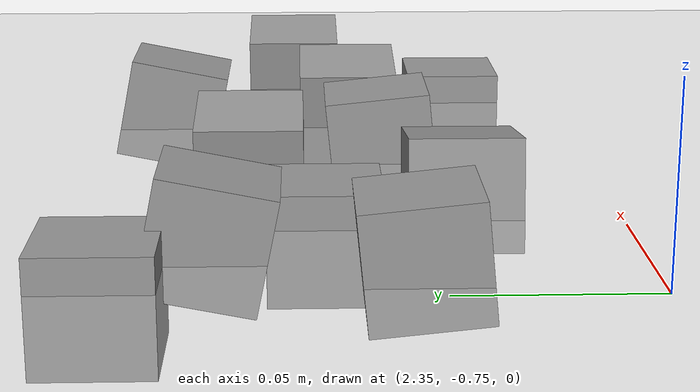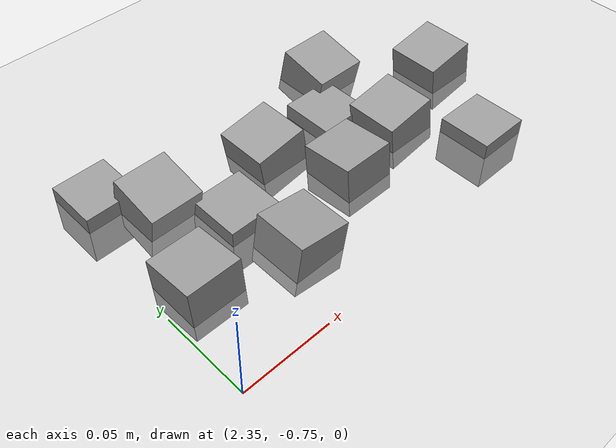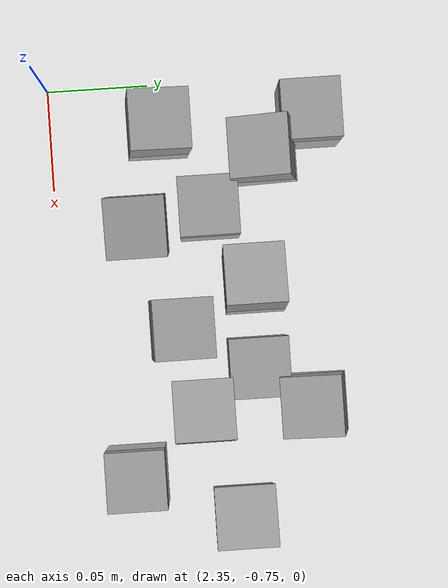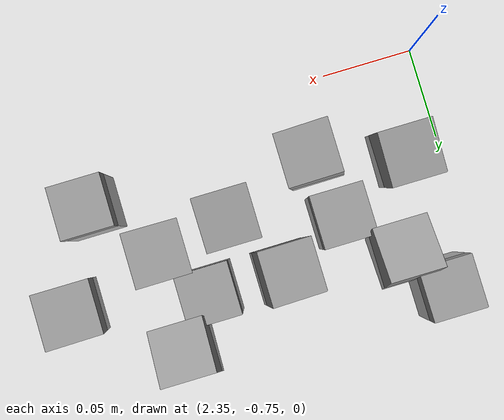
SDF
<sdf version="1.7">
 <world name="default">
  <model name="ground_plane">
   <static>1</static>
   <link name="link">
    <collision name="collision">
     <geometry><plane><normal>0 0 1</normal><size>100 100</size></plane></geometry>
     <surface><friction><ode><mu>100</mu><mu2>50</mu2></ode></friction></surface>
    </collision>
    <visual name="visual">
     <cast_shadows>0</cast_shadows>
     <geometry><plane><normal>0 0 1</normal><size>100 100</size></plane></geometry>
     <material>
      <script><uri>file://media/materials/scripts/gazebo.material</uri><name>Gazebo/Grey</name></script>
     </material>
    </visual>
   </link>
  </model>
  <model name="stone_road_6">
   <link name="link_0_clone_11">
    <inertial>
     <mass>1</mass>
     <inertia>
      <ixx>0.166667</ixx>
      <ixy>0</ixy>
      <ixz>0</ixz>
      <iyy>0.166667</iyy>
      <iyz>0</iyz>
      <izz>0.166667</izz>
     </inertia>
    </inertial>
    <pose>0.007758 0.071496 0.003778 0.2 -0 0</pose>
    <kinematic>1</kinematic>
    <visual name="visual">
     <geometry><box><size>0.03 0.03 0.03</size></box></geometry>
     <material>
      <lighting>1</lighting>
      <script><uri>file://media/materials/scripts/gazebo.material</uri><name>Gazebo/Grey</name></script>
      <shader type="pixel"><normal_map>__default__</normal_map></shader>
      <ambient>0.3 0.3 0.3 1</ambient>
      <diffuse>0.7 0.7 0.7 1</diffuse>
      <specular>0.01 0.01 0.01 1</specular>
      <emissive>0 0 0 1</emissive>
     </material>
    </visual>
    <collision name="collision">
     <geometry><box><size>0.03 0.03 0.03</size></box></geometry>
     <surface>
      <friction>
       <ode><mu>1</mu><mu2>1</mu2><fdir1>0 0 0</fdir1><slip1>0</slip1><slip2>0</slip2></ode>
       <torsional>
        <coefficient>1</coefficient>
        <patch_radius>0</patch_radius>
        <surface_radius>0</surface_radius>
        <use_patch_radius>1</use_patch_radius>
        <ode><slip>0</slip></ode>
       </torsional>
      </friction>
      <bounce><restitution_coefficient>0</restitution_coefficient><threshold>1e+06</threshold></bounce>
      <contact>
       <collide_without_contact>0</collide_without_contact>
       <collide_without_contact_bitmask>1</collide_without_contact_bitmask>
       <collide_bitmask>1</collide_bitmask>
       <ode>
        <soft_cfm>0</soft_cfm>
        <soft_erp>0.2</soft_erp>
        <kp>1e+13</kp>
        <kd>1</kd>
        <max_vel>0.01</max_vel>
        <min_depth>0</min_depth>
       </ode>
       <bullet>
        <split_impulse>1</split_impulse>
        <split_impulse_penetration_threshold>-0.01</split_impulse_penetration_threshold>
        <soft_cfm>0</soft_cfm>
        <soft_erp>0.2</soft_erp>
        <kp>1e+13</kp>
        <kd>1</kd>
       </bullet>
      </contact>
     </surface>
    </collision>
   </link>
   <link name="link_0_clone_2_clone_1">
    <inertial>
     <mass>1</mass>
     <inertia>
      <ixx>0.166667</ixx>
      <ixy>0</ixy>
      <ixz>0</ixz>
      <iyy>0.166667</iyy>
      <iyz>0</iyz>
      <izz>0.166667</izz>
     </inertia>
    </inertial>
    <pose>0.041447 0.006316 0.003778 0 0.15 0</pose>
    <kinematic>1</kinematic>
    <visual name="visual">
     <geometry><box><size>0.03 0.03 0.03</size></box></geometry>
     <material>
      <lighting>1</lighting>
      <script><uri>file://media/materials/scripts/gazebo.material</uri><name>Gazebo/Grey</name></script>
      <shader type="pixel"><normal_map>__default__</normal_map></shader>
      <ambient>0.3 0.3 0.3 1</ambient>
      <diffuse>0.7 0.7 0.7 1</diffuse>
      <specular>0.01 0.01 0.01 1</specular>
      <emissive>0 0 0 1</emissive>
     </material>
    </visual>
    <collision name="collision">
     <geometry><box><size>0.03 0.03 0.03</size></box></geometry>
     <surface>
      <friction>
       <ode><mu>1</mu><mu2>1</mu2><fdir1>0 0 0</fdir1><slip1>0</slip1><slip2>0</slip2></ode>
       <torsional>
        <coefficient>1</coefficient>
        <patch_radius>0</patch_radius>
        <surface_radius>0</surface_radius>
        <use_patch_radius>1</use_patch_radius>
        <ode><slip>0</slip></ode>
       </torsional>
      </friction>
      <bounce><restitution_coefficient>0</restitution_coefficient><threshold>1e+06</threshold></bounce>
      <contact>
       <collide_without_contact>0</collide_without_contact>
       <collide_without_contact_bitmask>1</collide_without_contact_bitmask>
       <collide_bitmask>1</collide_bitmask>
       <ode>
        <soft_cfm>0</soft_cfm>
        <soft_erp>0.2</soft_erp>
        <kp>1e+13</kp>
        <kd>1</kd>
        <max_vel>0.01</max_vel>
        <min_depth>0</min_depth>
       </ode>
       <bullet>
        <split_impulse>1</split_impulse>
        <split_impulse_penetration_threshold>-0.01</split_impulse_penetration_threshold>
        <soft_cfm>0</soft_cfm>
        <soft_erp>0.2</soft_erp>
        <kp>1e+13</kp>
        <kd>1</kd>
       </bullet>
      </contact>
     </surface>
    </collision>
   </link>
   <link name="link_0_clone_2_clone_2_clone">
    <inertial>
     <mass>1</mass>
     <inertia>
      <ixx>0.166667</ixx>
      <ixy>0</ixy>
      <ixz>0</ixz>
      <iyy>0.166667</iyy>
      <iyz>0</iyz>
      <izz>0.166667</izz>
     </inertia>
    </inertial>
    <pose>0.189059 0.051135 0.003778 0 -0.15 0</pose>
    <kinematic>1</kinematic>
    <visual name="visual">
     <geometry><box><size>0.03 0.03 0.03</size></box></geometry>
     <material>
      <lighting>1</lighting>
      <script><uri>file://media/materials/scripts/gazebo.material</uri><name>Gazebo/Grey</name></script>
      <shader type="pixel"><normal_map>__default__</normal_map></shader>
      <ambient>0.3 0.3 0.3 1</ambient>
      <diffuse>0.7 0.7 0.7 1</diffuse>
      <specular>0.01 0.01 0.01 1</specular>
      <emissive>0 0 0 1</emissive>
     </material>
    </visual>
    <collision name="collision">
     <geometry><box><size>0.03 0.03 0.03</size></box></geometry>
     <surface>
      <friction>
       <ode><mu>1</mu><mu2>1</mu2><fdir1>0 0 0</fdir1><slip1>0</slip1><slip2>0</slip2></ode>
       <torsional>
        <coefficient>1</coefficient>
        <patch_radius>0</patch_radius>
        <surface_radius>0</surface_radius>
        <use_patch_radius>1</use_patch_radius>
        <ode><slip>0</slip></ode>
       </torsional>
      </friction>
      <bounce><restitution_coefficient>0</restitution_coefficient><threshold>1e+06</threshold></bounce>
      <contact>
       <collide_without_contact>0</collide_without_contact>
       <collide_without_contact_bitmask>1</collide_without_contact_bitmask>
       <collide_bitmask>1</collide_bitmask>
       <ode>
        <soft_cfm>0</soft_cfm>
        <soft_erp>0.2</soft_erp>
        <kp>1e+13</kp>
        <kd>1</kd>
        <max_vel>0.01</max_vel>
        <min_depth>0</min_depth>
       </ode>
       <bullet>
        <split_impulse>1</split_impulse>
        <split_impulse_penetration_threshold>-0.01</split_impulse_penetration_threshold>
        <soft_cfm>0</soft_cfm>
        <soft_erp>0.2</soft_erp>
        <kp>1e+13</kp>
        <kd>1</kd>
       </bullet>
      </contact>
     </surface>
    </collision>
   </link>
   <link name="link_0_clone_2_clone_2_clone_13_clone_clone_0">
    <inertial>
     <mass>1</mass>
     <inertia>
      <ixx>0.166667</ixx>
      <ixy>0</ixy>
      <ixz>0</ixz>
      <iyy>0.166667</iyy>
      <iyz>0</iyz>
      <izz>0.166667</izz>
     </inertia>
    </inertial>
    <pose>0.094072 0.02539 0.003778 -0.1 0 0</pose>
    <kinematic>1</kinematic>
    <visual name="visual">
     <geometry><box><size>0.03 0.03 0.03</size></box></geometry>
     <material>
      <lighting>1</lighting>
      <script><uri>file://media/materials/scripts/gazebo.material</uri><name>Gazebo/Grey</name></script>
      <shader type="pixel"><normal_map>__default__</normal_map></shader>
      <ambient>0.3 0.3 0.3 1</ambient>
      <diffuse>0.7 0.7 0.7 1</diffuse>
      <specular>0.01 0.01 0.01 1</specular>
      <emissive>0 0 0 1</emissive>
     </material>
    </visual>
    <collision name="collision">
     <geometry><box><size>0.03 0.03 0.03</size></box></geometry>
     <surface>
      <friction>
       <ode><mu>1</mu><mu2>1</mu2><fdir1>0 0 0</fdir1><slip1>0</slip1><slip2>0</slip2></ode>
       <torsional>
        <coefficient>1</coefficient>
        <patch_radius>0</patch_radius>
        <surface_radius>0</surface_radius>
        <use_patch_radius>1</use_patch_radius>
        <ode><slip>0</slip></ode>
       </torsional>
      </friction>
      <bounce><restitution_coefficient>0</restitution_coefficient><threshold>1e+06</threshold></bounce>
      <contact>
       <collide_without_contact>0</collide_without_contact>
       <collide_without_contact_bitmask>1</collide_without_contact_bitmask>
       <collide_bitmask>1</collide_bitmask>
       <ode>
        <soft_cfm>0</soft_cfm>
        <soft_erp>0.2</soft_erp>
        <kp>1e+13</kp>
        <kd>1</kd>
        <max_vel>0.01</max_vel>
        <min_depth>0</min_depth>
       </ode>
       <bullet>
        <split_impulse>1</split_impulse>
        <split_impulse_penetration_threshold>-0.01</split_impulse_penetration_threshold>
        <soft_cfm>0</soft_cfm>
        <soft_erp>0.2</soft_erp>
        <kp>1e+13</kp>
        <kd>1</kd>
       </bullet>
      </contact>
     </surface>
    </collision>
   </link>
   <link name="link_0_clone_2_clone_2_clone_13_clone_clone_16_clone_0">
    <inertial>
     <mass>1</mass>
     <inertia>
      <ixx>0.166667</ixx>
      <ixy>0</ixy>
      <ixz>0</ixz>
      <iyy>0.166667</iyy>
      <iyz>0</iyz>
      <izz>0.166667</izz>
     </inertia>
    </inertial>
    <pose>-0.010782 0.09679 -0.006222 0 -0 0</pose>
    <kinematic>1</kinematic>
    <visual name="visual">
     <geometry><box><size>0.03 0.03 0.03</size></box></geometry>
     <material>
      <lighting>1</lighting>
      <script><uri>file://media/materials/scripts/gazebo.material</uri><name>Gazebo/Grey</name></script>
      <shader type="pixel"><normal_map>__default__</normal_map></shader>
      <ambient>0.3 0.3 0.3 1</ambient>
      <diffuse>0.7 0.7 0.7 1</diffuse>
      <specular>0.01 0.01 0.01 1</specular>
      <emissive>0 0 0 1</emissive>
     </material>
    </visual>
    <collision name="collision">
     <geometry><box><size>0.03 0.03 0.03</size></box></geometry>
     <surface>
      <friction>
       <ode><mu>1</mu><mu2>1</mu2><fdir1>0 0 0</fdir1><slip1>0</slip1><slip2>0</slip2></ode>
       <torsional>
        <coefficient>1</coefficient>
        <patch_radius>0</patch_radius>
        <surface_radius>0</surface_radius>
        <use_patch_radius>1</use_patch_radius>
        <ode><slip>0</slip></ode>
       </torsional>
      </friction>
      <bounce><restitution_coefficient>0</restitution_coefficient><threshold>1e+06</threshold></bounce>
      <contact>
       <collide_without_contact>0</collide_without_contact>
       <collide_without_contact_bitmask>1</collide_without_contact_bitmask>
       <collide_bitmask>1</collide_bitmask>
       <ode>
        <soft_cfm>0</soft_cfm>
        <soft_erp>0.2</soft_erp>
        <kp>1e+13</kp>
        <kd>1</kd>
        <max_vel>0.01</max_vel>
        <min_depth>0</min_depth>
       </ode>
       <bullet>
        <split_impulse>1</split_impulse>
        <split_impulse_penetration_threshold>-0.01</split_impulse_penetration_threshold>
        <soft_cfm>0</soft_cfm>
        <soft_erp>0.2</soft_erp>
        <kp>1e+13</kp>
        <kd>1</kd>
       </bullet>
      </contact>
     </surface>
    </collision>
   </link>
   <link name="link_0_clone_2_clone_2_clone_13_clone_clone_16_clone_1">
    <inertial>
     <mass>1</mass>
     <inertia>
      <ixx>0.166667</ixx>
      <ixy>0</ixy>
      <ixz>0</ixz>
      <iyy>0.166667</iyy>
      <iyz>0</iyz>
      <izz>0.166667</izz>
     </inertia>
    </inertial>
    <pose>0.033787 0.042837 -0.006222 0 -0 0</pose>
    <kinematic>1</kinematic>
    <visual name="visual">
     <geometry><box><size>0.03 0.03 0.03</size></box></geometry>
     <material>
      <lighting>1</lighting>
      <script><uri>file://media/materials/scripts/gazebo.material</uri><name>Gazebo/Grey</name></script>
      <shader type="pixel"><normal_map>__default__</normal_map></shader>
      <ambient>0.3 0.3 0.3 1</ambient>
      <diffuse>0.7 0.7 0.7 1</diffuse>
      <specular>0.01 0.01 0.01 1</specular>
      <emissive>0 0 0 1</emissive>
     </material>
    </visual>
    <collision name="collision">
     <geometry><box><size>0.03 0.03 0.03</size></box></geometry>
     <surface>
      <friction>
       <ode><mu>1</mu><mu2>1</mu2><fdir1>0 0 0</fdir1><slip1>0</slip1><slip2>0</slip2></ode>
       <torsional>
        <coefficient>1</coefficient>
        <patch_radius>0</patch_radius>
        <surface_radius>0</surface_radius>
        <use_patch_radius>1</use_patch_radius>
        <ode><slip>0</slip></ode>
       </torsional>
      </friction>
      <bounce><restitution_coefficient>0</restitution_coefficient><threshold>1e+06</threshold></bounce>
      <contact>
       <collide_without_contact>0</collide_without_contact>
       <collide_without_contact_bitmask>1</collide_without_contact_bitmask>
       <collide_bitmask>1</collide_bitmask>
       <ode>
        <soft_cfm>0</soft_cfm>
        <soft_erp>0.2</soft_erp>
        <kp>1e+13</kp>
        <kd>1</kd>
        <max_vel>0.01</max_vel>
        <min_depth>0</min_depth>
       </ode>
       <bullet>
        <split_impulse>1</split_impulse>
        <split_impulse_penetration_threshold>-0.01</split_impulse_penetration_threshold>
        <soft_cfm>0</soft_cfm>
        <soft_erp>0.2</soft_erp>
        <kp>1e+13</kp>
        <kd>1</kd>
       </bullet>
      </contact>
     </surface>
    </collision>
   </link>
   <link name="link_0_clone_2_clone_2_clone_13_clone_clone_16_clone_13">
    <inertial>
     <mass>1</mass>
     <inertia>
      <ixx>0.166667</ixx>
      <ixy>0</ixy>
      <ixz>0</ixz>
      <iyy>0.166667</iyy>
      <iyz>0</iyz>
      <izz>0.166667</izz>
     </inertia>
    </inertial>
    <pose>0.168013 -0.00203 -0.006222 0 -0 0</pose>
    <kinematic>1</kinematic>
    <visual name="visual">
     <geometry><box><size>0.03 0.03 0.03</size></box></geometry>
     <material>
      <lighting>1</lighting>
      <script><uri>file://media/materials/scripts/gazebo.material</uri><name>Gazebo/Grey</name></script>
      <shader type="pixel"><normal_map>__default__</normal_map></shader>
      <ambient>0.3 0.3 0.3 1</ambient>
      <diffuse>0.7 0.7 0.7 1</diffuse>
      <specular>0.01 0.01 0.01 1</specular>
      <emissive>0 0 0 1</emissive>
     </material>
    </visual>
    <collision name="collision">
     <geometry><box><size>0.03 0.03 0.03</size></box></geometry>
     <surface>
      <friction>
       <ode><mu>1</mu><mu2>1</mu2><fdir1>0 0 0</fdir1><slip1>0</slip1><slip2>0</slip2></ode>
       <torsional>
        <coefficient>1</coefficient>
        <patch_radius>0</patch_radius>
        <surface_radius>0</surface_radius>
        <use_patch_radius>1</use_patch_radius>
        <ode><slip>0</slip></ode>
       </torsional>
      </friction>
      <bounce><restitution_coefficient>0</restitution_coefficient><threshold>1e+06</threshold></bounce>
      <contact>
       <collide_without_contact>0</collide_without_contact>
       <collide_without_contact_bitmask>1</collide_without_contact_bitmask>
       <collide_bitmask>1</collide_bitmask>
       <ode>
        <soft_cfm>0</soft_cfm>
        <soft_erp>0.2</soft_erp>
        <kp>1e+13</kp>
        <kd>1</kd>
        <max_vel>0.01</max_vel>
        <min_depth>0</min_depth>
       </ode>
       <bullet>
        <split_impulse>1</split_impulse>
        <split_impulse_penetration_threshold>-0.01</split_impulse_penetration_threshold>
        <soft_cfm>0</soft_cfm>
        <soft_erp>0.2</soft_erp>
        <kp>1e+13</kp>
        <kd>1</kd>
       </bullet>
      </contact>
     </surface>
    </collision>
   </link>
   <link name="link_0_clone_2_clone_2_clone_13_clone_clone_16_clone_20">
    <inertial>
     <mass>1</mass>
     <inertia>
      <ixx>0.166667</ixx>
      <ixy>0</ixy>
      <ixz>0</ixz>
      <iyy>0.166667</iyy>
      <iyz>0</iyz>
      <izz>0.166667</izz>
     </inertia>
    </inertial>
    <pose>0.115763 0.063063 -0.006222 0 -0 0</pose>
    <kinematic>1</kinematic>
    <visual name="visual">
     <geometry><box><size>0.03 0.03 0.03</size></box></geometry>
     <material>
      <lighting>1</lighting>
      <script><uri>file://media/materials/scripts/gazebo.material</uri><name>Gazebo/Grey</name></script>
      <shader type="pixel"><normal_map>__default__</normal_map></shader>
      <ambient>0.3 0.3 0.3 1</ambient>
      <diffuse>0.7 0.7 0.7 1</diffuse>
      <specular>0.01 0.01 0.01 1</specular>
      <emissive>0 0 0 1</emissive>
     </material>
    </visual>
    <collision name="collision">
     <geometry><box><size>0.03 0.03 0.03</size></box></geometry>
     <surface>
      <friction>
       <ode><mu>1</mu><mu2>1</mu2><fdir1>0 0 0</fdir1><slip1>0</slip1><slip2>0</slip2></ode>
       <torsional>
        <coefficient>1</coefficient>
        <patch_radius>0</patch_radius>
        <surface_radius>0</surface_radius>
        <use_patch_radius>1</use_patch_radius>
        <ode><slip>0</slip></ode>
       </torsional>
      </friction>
      <bounce><restitution_coefficient>0</restitution_coefficient><threshold>1e+06</threshold></bounce>
      <contact>
       <collide_without_contact>0</collide_without_contact>
       <collide_without_contact_bitmask>1</collide_without_contact_bitmask>
       <collide_bitmask>1</collide_bitmask>
       <ode>
        <soft_cfm>0</soft_cfm>
        <soft_erp>0.2</soft_erp>
        <kp>1e+13</kp>
        <kd>1</kd>
        <max_vel>0.01</max_vel>
        <min_depth>0</min_depth>
       </ode>
       <bullet>
        <split_impulse>1</split_impulse>
        <split_impulse_penetration_threshold>-0.01</split_impulse_penetration_threshold>
        <soft_cfm>0</soft_cfm>
        <soft_erp>0.2</soft_erp>
        <kp>1e+13</kp>
        <kd>1</kd>
       </bullet>
      </contact>
     </surface>
    </collision>
   </link>
   <link name="link_0_clone_2_clone_2_clone_13_clone_clone_3">
    <inertial>
     <mass>1</mass>
     <inertia>
      <ixx>0.166667</ixx>
      <ixy>0</ixy>
      <ixz>0</ixz>
      <iyy>0.166667</iyy>
      <iyz>0</iyz>
      <izz>0.166667</izz>
     </inertia>
    </inertial>
    <pose>-0.008408 0.020239 0.003778 -0.1 0 0</pose>
    <kinematic>1</kinematic>
    <visual name="visual">
     <geometry><box><size>0.03 0.03 0.03</size></box></geometry>
     <material>
      <lighting>1</lighting>
      <script><uri>file://media/materials/scripts/gazebo.material</uri><name>Gazebo/Grey</name></script>
      <shader type="pixel"><normal_map>__default__</normal_map></shader>
      <ambient>0.3 0.3 0.3 1</ambient>
      <diffuse>0.7 0.7 0.7 1</diffuse>
      <specular>0.01 0.01 0.01 1</specular>
      <emissive>0 0 0 1</emissive>
     </material>
    </visual>
    <collision name="collision">
     <geometry><box><size>0.03 0.03 0.03</size></box></geometry>
     <surface>
      <friction>
       <ode><mu>1</mu><mu2>1</mu2><fdir1>0 0 0</fdir1><slip1>0</slip1><slip2>0</slip2></ode>
       <torsional>
        <coefficient>1</coefficient>
        <patch_radius>0</patch_radius>
        <surface_radius>0</surface_radius>
        <use_patch_radius>1</use_patch_radius>
        <ode><slip>0</slip></ode>
       </torsional>
      </friction>
      <bounce><restitution_coefficient>0</restitution_coefficient><threshold>1e+06</threshold></bounce>
      <contact>
       <collide_without_contact>0</collide_without_contact>
       <collide_without_contact_bitmask>1</collide_without_contact_bitmask>
       <collide_bitmask>1</collide_bitmask>
       <ode>
        <soft_cfm>0</soft_cfm>
        <soft_erp>0.2</soft_erp>
        <kp>1e+13</kp>
        <kd>1</kd>
        <max_vel>0.01</max_vel>
        <min_depth>0</min_depth>
       </ode>
       <bullet>
        <split_impulse>1</split_impulse>
        <split_impulse_penetration_threshold>-0.01</split_impulse_penetration_threshold>
        <soft_cfm>0</soft_cfm>
        <soft_erp>0.2</soft_erp>
        <kp>1e+13</kp>
        <kd>1</kd>
       </bullet>
      </contact>
     </surface>
    </collision>
   </link>
   <link name="link_0_clone_2_clone_2_clone_6">
    <inertial>
     <mass>1</mass>
     <inertia>
      <ixx>0.166667</ixx>
      <ixy>0</ixy>
      <ixz>0</ixz>
      <iyy>0.166667</iyy>
      <iyz>0</iyz>
      <izz>0.166667</izz>
     </inertia>
    </inertial>
    <pose>0.136141 0.034017 0.003778 0 -0.15 0</pose>
    <kinematic>1</kinematic>
    <visual name="visual">
     <geometry><box><size>0.03 0.03 0.03</size></box></geometry>
     <material>
      <lighting>1</lighting>
      <script><uri>file://media/materials/scripts/gazebo.material</uri><name>Gazebo/Grey</name></script>
      <shader type="pixel"><normal_map>__default__</normal_map></shader>
      <ambient>0.3 0.3 0.3 1</ambient>
      <diffuse>0.7 0.7 0.7 1</diffuse>
      <specular>0.01 0.01 0.01 1</specular>
      <emissive>0 0 0 1</emissive>
     </material>
    </visual>
    <collision name="collision">
     <geometry><box><size>0.03 0.03 0.03</size></box></geometry>
     <surface>
      <friction>
       <ode><mu>1</mu><mu2>1</mu2><fdir1>0 0 0</fdir1><slip1>0</slip1><slip2>0</slip2></ode>
       <torsional>
        <coefficient>1</coefficient>
        <patch_radius>0</patch_radius>
        <surface_radius>0</surface_radius>
        <use_patch_radius>1</use_patch_radius>
        <ode><slip>0</slip></ode>
       </torsional>
      </friction>
      <bounce><restitution_coefficient>0</restitution_coefficient><threshold>1e+06</threshold></bounce>
      <contact>
       <collide_without_contact>0</collide_without_contact>
       <collide_without_contact_bitmask>1</collide_without_contact_bitmask>
       <collide_bitmask>1</collide_bitmask>
       <ode>
        <soft_cfm>0</soft_cfm>
        <soft_erp>0.2</soft_erp>
        <kp>1e+13</kp>
        <kd>1</kd>
        <max_vel>0.01</max_vel>
        <min_depth>0</min_depth>
       </ode>
       <bullet>
        <split_impulse>1</split_impulse>
        <split_impulse_penetration_threshold>-0.01</split_impulse_penetration_threshold>
        <soft_cfm>0</soft_cfm>
        <soft_erp>0.2</soft_erp>
        <kp>1e+13</kp>
        <kd>1</kd>
       </bullet>
      </contact>
     </surface>
    </collision>
   </link>
   <link name="link_0_clone_2_clone_2_clone_9">
    <inertial>
     <mass>1</mass>
     <inertia>
      <ixx>0.166667</ixx>
      <ixy>0</ixy>
      <ixz>0</ixz>
      <iyy>0.166667</iyy>
      <iyz>0</iyz>
      <izz>0.166667</izz>
     </inertia>
    </inertial>
    <pose>0.071478 0.063212 0.003778 0 -0.15 0</pose>
    <kinematic>1</kinematic>
    <visual name="visual">
     <geometry><box><size>0.03 0.03 0.03</size></box></geometry>
     <material>
      <lighting>1</lighting>
      <script><uri>file://media/materials/scripts/gazebo.material</uri><name>Gazebo/Grey</name></script>
      <shader type="pixel"><normal_map>__default__</normal_map></shader>
      <ambient>0.3 0.3 0.3 1</ambient>
      <diffuse>0.7 0.7 0.7 1</diffuse>
      <specular>0.01 0.01 0.01 1</specular>
      <emissive>0 0 0 1</emissive>
     </material>
    </visual>
    <collision name="collision">
     <geometry><box><size>0.03 0.03 0.03</size></box></geometry>
     <surface>
      <friction>
       <ode><mu>1</mu><mu2>1</mu2><fdir1>0 0 0</fdir1><slip1>0</slip1><slip2>0</slip2></ode>
       <torsional>
        <coefficient>1</coefficient>
        <patch_radius>0</patch_radius>
        <surface_radius>0</surface_radius>
        <use_patch_radius>1</use_patch_radius>
        <ode><slip>0</slip></ode>
       </torsional>
      </friction>
      <bounce><restitution_coefficient>0</restitution_coefficient><threshold>1e+06</threshold></bounce>
      <contact>
       <collide_without_contact>0</collide_without_contact>
       <collide_without_contact_bitmask>1</collide_without_contact_bitmask>
       <collide_bitmask>1</collide_bitmask>
       <ode>
        <soft_cfm>0</soft_cfm>
        <soft_erp>0.2</soft_erp>
        <kp>1e+13</kp>
        <kd>1</kd>
        <max_vel>0.01</max_vel>
        <min_depth>0</min_depth>
       </ode>
       <bullet>
        <split_impulse>1</split_impulse>
        <split_impulse_penetration_threshold>-0.01</split_impulse_penetration_threshold>
        <soft_cfm>0</soft_cfm>
        <soft_erp>0.2</soft_erp>
        <kp>1e+13</kp>
        <kd>1</kd>
       </bullet>
      </contact>
     </surface>
    </collision>
   </link>
   <link name="link_0_clone_8">
    <inertial>
     <mass>1</mass>
     <inertia>
      <ixx>0.166667</ixx>
      <ixy>0</ixy>
      <ixz>0</ixz>
      <iyy>0.166667</iyy>
      <iyz>0</iyz>
      <izz>0.166667</izz>
     </inertia>
    </inertial>
    <pose>0.135749 0.089175 0.003778 0.2 -0 0</pose>
    <kinematic>1</kinematic>
    <visual name="visual">
     <geometry><box><size>0.03 0.03 0.03</size></box></geometry>
     <material>
      <lighting>1</lighting>
      <script><uri>file://media/materials/scripts/gazebo.material</uri><name>Gazebo/Grey</name></script>
      <shader type="pixel"><normal_map>__default__</normal_map></shader>
      <ambient>0.3 0.3 0.3 1</ambient>
      <diffuse>0.7 0.7 0.7 1</diffuse>
      <specular>0.01 0.01 0.01 1</specular>
      <emissive>0 0 0 1</emissive>
     </material>
    </visual>
    <collision name="collision">
     <geometry><box><size>0.03 0.03 0.03</size></box></geometry>
     <surface>
      <friction>
       <ode><mu>1</mu><mu2>1</mu2><fdir1>0 0 0</fdir1><slip1>0</slip1><slip2>0</slip2></ode>
       <torsional>
        <coefficient>1</coefficient>
        <patch_radius>0</patch_radius>
        <surface_radius>0</surface_radius>
        <use_patch_radius>1</use_patch_radius>
        <ode><slip>0</slip></ode>
       </torsional>
      </friction>
      <bounce><restitution_coefficient>0</restitution_coefficient><threshold>1e+06</threshold></bounce>
      <contact>
       <collide_without_contact>0</collide_without_contact>
       <collide_without_contact_bitmask>1</collide_without_contact_bitmask>
       <collide_bitmask>1</collide_bitmask>
       <ode>
        <soft_cfm>0</soft_cfm>
        <soft_erp>0.2</soft_erp>
        <kp>1e+13</kp>
        <kd>1</kd>
        <max_vel>0.01</max_vel>
        <min_depth>0</min_depth>
       </ode>
       <bullet>
        <split_impulse>1</split_impulse>
        <split_impulse_penetration_threshold>-0.01</split_impulse_penetration_threshold>
        <soft_cfm>0</soft_cfm>
        <soft_erp>0.2</soft_erp>
        <kp>1e+13</kp>
        <kd>1</kd>
       </bullet>
      </contact>
     </surface>
    </collision>
   </link>
   <static>0</static>
   <pose>2.379 -0.715905 -0 0 -0 0</pose>
  </model>
 </world>
</sdf>
